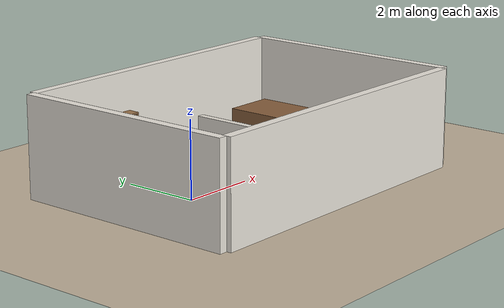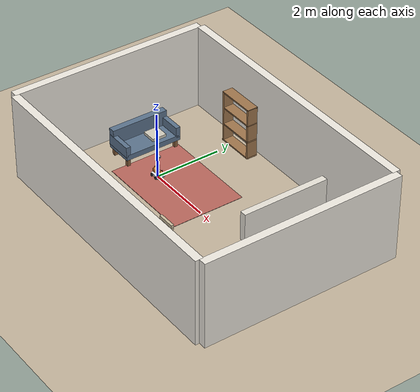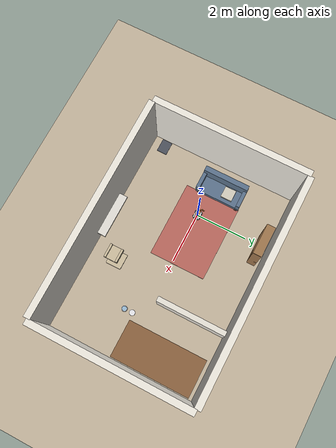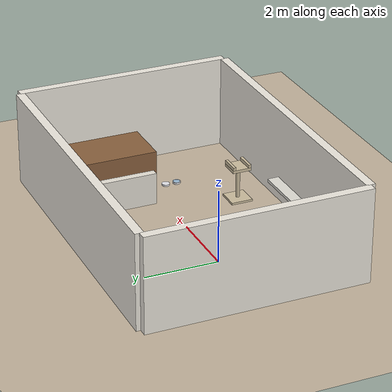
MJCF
<mujoco model="pet">
  <include file="pyunto_p1.xml"/>

  <compiler angle="radian" autolimits="true"/>
  <option timestep="0.004" integrator="implicitfast" gravity="0 0 -9.81"/>

  <visual>
    <headlight ambient="0.46 0.46 0.45" diffuse="0.42 0.42 0.41" specular="0.06 0.06 0.06"/>
    <map znear="0.02" zfar="60"/>
    <quality shadowsize="4096"/>
    <global offwidth="1600" offheight="1200"/>
  </visual>

  <asset>
    <texture name="sky" type="skybox" builtin="gradient"
             rgb1="0.55 0.62 0.72" rgb2="0.86 0.88 0.90" width="256" height="256"/>
    <texture name="floor_tex" type="2d" builtin="checker" rgb1="0.78 0.72 0.63"
             rgb2="0.74 0.68 0.59" width="256" height="256"/>
    <material name="floor" texture="floor_tex" texrepeat="8 6" specular="0.05"/>
    <material name="wall" rgba="0.93 0.91 0.87 1" specular="0.04"/>
    <material name="inner_wall" rgba="0.90 0.88 0.84 1" specular="0.04"/>
    <material name="wood" rgba="0.54 0.38 0.24 1" specular="0.15"/>
    <material name="sofa_mat" rgba="0.36 0.45 0.55 1" specular="0.08"/>
    <material name="cushion_mat" rgba="0.82 0.80 0.74 1" specular="0.05"/>
    <material name="shelf_mat" rgba="0.62 0.46 0.30 1" specular="0.12"/>
    <material name="rug_mat" rgba="0.72 0.40 0.36 1" specular="0.03"/>
    <material name="sill_mat" rgba="0.88 0.87 0.84 1" specular="0.06"/>
    <material name="carpet_mat" rgba="0.80 0.74 0.62 1" specular="0.04"/>
    <material name="steel" rgba="0.72 0.73 0.76 1" specular="0.5" shininess="0.6"/>

    <material name="cat_fur" rgba="0.87 0.52 0.22 1" specular="0.06"/>
    <material name="cat_belly" rgba="0.96 0.92 0.86 1" specular="0.05"/>
    <material name="cat_dark" rgba="0.42 0.24 0.12 1" specular="0.06"/>
    <material name="cat_eye" rgba="0.55 0.78 0.35 1" emission="0.25"/>

    <material name="bowl_mat" rgba="0.90 0.90 0.92 1" specular="0.35"/>
    <material name="water_mat" rgba="0.55 0.72 0.85 0.75" specular="0.5"/>
    <material name="dock_mat" rgba="0.30 0.32 0.36 1" specular="0.2"/>
  </asset>

  <worldbody>
    <light name="sun" directional="true" pos="2 0 5" dir="-0.2 0.15 -1"
           diffuse="0.55 0.54 0.52" specular="0.08 0.08 0.08"/>
    <!-- Warm light through the south window, so the sill reads as the sunny spot a cat
         would actually choose. -->
    <light name="window_light" pos="1.6 -2.6 1.9" dir="0 0.6 -0.5"
           diffuse="0.35 0.31 0.24" specular="0.05 0.05 0.05"/>

    <geom name="floor" type="plane" size="20 20 0.05" material="floor"
          friction="1.0 0.02 0.001" condim="3"/>

    <!-- ===== outer walls ===== -->
    <geom name="wall_n" type="box" pos="2.0 3.0 1.3" size="4.2 0.12 1.3" material="wall"/>
    <geom name="wall_s" type="box" pos="2.0 -3.0 1.3" size="4.2 0.12 1.3" material="wall"/>
    <geom name="wall_w" type="box" pos="-2.3 0 1.3" size="0.12 3.0 1.3" material="wall"/>
    <geom name="wall_e" type="box" pos="6.3 0 1.3" size="0.12 3.0 1.3" material="wall"/>

    <!-- Half-height divider to the kitchen: a cat goes over it, the robot must go round. -->
    <geom name="div_kitchen" type="box" pos="3.6 1.6 0.45" size="0.10 1.4 0.45"
          material="inner_wall"/>

    <!-- ===== living room (west) ===== -->
    <geom name="rug" type="box" pos="0.6 0.2 0.006" size="1.5 1.1 0.006" material="rug_mat"/>

    <body name="sofa" pos="-1.2 0.4 0">
      <geom name="sofa_leg_a" type="box" pos="0.32 0.78 0.13" size="0.05 0.05 0.13" material="wood"/>
      <geom name="sofa_leg_b" type="box" pos="0.32 -0.78 0.13" size="0.05 0.05 0.13" material="wood"/>
      <geom name="sofa_leg_c" type="box" pos="-0.32 0.78 0.13" size="0.05 0.05 0.13" material="wood"/>
      <geom name="sofa_leg_d" type="box" pos="-0.32 -0.78 0.13" size="0.05 0.05 0.13" material="wood"/>
      <geom name="sofa_seat" type="box" pos="0 0 0.325" size="0.42 0.88 0.08" material="sofa_mat"/>
      <geom name="sofa_back" type="box" pos="-0.33 0 0.56" size="0.10 0.88 0.30" material="sofa_mat"/>
      <geom name="sofa_arm_l" type="box" pos="0 0.82 0.51" size="0.42 0.07 0.16" material="sofa_mat"/>
      <geom name="sofa_arm_r" type="box" pos="0 -0.82 0.51" size="0.42 0.07 0.16" material="sofa_mat"/>
      <geom name="sofa_cushion" type="box" pos="0.05 0.30 0.43" size="0.22 0.22 0.06"
            material="cushion_mat"/>
    </body>

    <!--
      Bookshelf. The top is at 1.62 m, well above the robot's camera at 0.25 m, so a cat up
      there can only be found by tilting UP -- the other half of what the head is for.
    -->
    <body name="shelf" pos="0.2 2.6 0">
      <geom name="shelf_side_l" type="box" pos="-0.55 0 0.80" size="0.03 0.16 0.80" material="shelf_mat"/>
      <geom name="shelf_side_r" type="box" pos="0.55 0 0.80" size="0.03 0.16 0.80" material="shelf_mat"/>
      <geom name="shelf_b0" type="box" pos="0 0 0.02" size="0.58 0.16 0.02" material="shelf_mat"/>
      <geom name="shelf_b1" type="box" pos="0 0 0.56" size="0.58 0.16 0.02" material="shelf_mat"/>
      <geom name="shelf_b2" type="box" pos="0 0 1.10" size="0.58 0.16 0.02" material="shelf_mat"/>
      <geom name="shelf_top" type="box" pos="0 0 1.60" size="0.58 0.16 0.02" material="shelf_mat"/>
    </body>

    <!-- Window sill on the south wall: the sunny spot, at 0.62 m. -->
    <geom name="sill" type="box" pos="1.6 -2.72 0.62" size="0.85 0.16 0.04" material="sill_mat"/>

    <!--
      Cat tree, the third height. A cat asleep in the cradle at 0.95 m is visible from across
      the room only if the camera is aimed at it.
    -->
    <body name="tree" pos="2.9 -1.9 0">
      <geom name="tree_base" type="box" pos="0 0 0.03" size="0.30 0.30 0.03" material="carpet_mat"/>
      <geom name="tree_post" type="cylinder" pos="0 0 0.48" size="0.055 0.45" material="carpet_mat"/>
      <geom name="tree_cradle" type="box" pos="0 0 0.95" size="0.26 0.26 0.04" material="carpet_mat"/>
      <geom name="tree_rim_n" type="box" pos="0 0.22 1.03" size="0.26 0.04 0.05" material="carpet_mat"/>
      <geom name="tree_rim_s" type="box" pos="0 -0.22 1.03" size="0.26 0.04 0.05" material="carpet_mat"/>
    </body>

    <!-- ===== kitchen (east) ===== -->
    <geom name="counter" type="box" pos="5.4 1.2 0.45" size="0.70 1.5 0.45" material="wood"/>

    <!-- Food and water, by the kitchen doorway. Whether the bowl has been visited is the
         other thing an owner wants to know, so it is somewhere the robot can see. -->
    <body name="bowls" pos="4.4 -0.6 0">
      <geom name="bowl_food" type="cylinder" pos="0 0.16 0.025" size="0.11 0.025" material="bowl_mat"/>
      <geom name="bowl_water" type="cylinder" pos="0 -0.16 0.025" size="0.11 0.025" material="bowl_mat"/>
      <geom name="water" type="cylinder" pos="0 -0.16 0.045" size="0.095 0.008" material="water_mat"/>
    </body>

    <!-- The robot's dock, out of the way against the west wall. -->
    <geom name="dock" type="box" pos="-1.9 -2.4 0.012" size="0.26 0.20 0.012" material="dock_mat"/>

    <body name="cat" pos="0 0 0.16">
      <joint name="cat_x" type="slide" axis="1 0 0" range="-3.0 7.0" damping="14"/>
      <joint name="cat_y" type="slide" axis="0 1 0" range="-3.2 3.2" damping="14"/>
      <joint name="cat_z" type="slide" axis="0 0 1" range="-0.06 1.60" damping="14"/>
      <joint name="cat_yaw" type="hinge" axis="0 0 1" range="-3.2 3.2" damping="2.0"/>

      <!-- Curled small: about 0.34 m nose to tail base when sitting, which is a real cat. -->
      <geom name="cat_body" type="capsule" fromto="-0.11 0 0  0.09 0 0" size="0.072"
            material="cat_fur" contype="0" conaffinity="0"/>
      <geom name="cat_haunch" type="sphere" pos="-0.12 0 -0.01" size="0.075"
            material="cat_fur" contype="0" conaffinity="0"/>
      <geom name="cat_chest" type="sphere" pos="0.07 0 -0.02" size="0.058"
            material="cat_belly" contype="0" conaffinity="0"/>
      <geom name="cat_head" type="sphere" pos="0.17 0 0.045" size="0.055"
            material="cat_fur" contype="0" conaffinity="0"/>
      <geom name="cat_muzzle" type="sphere" pos="0.213 0 0.022" size="0.030"
            material="cat_belly" contype="0" conaffinity="0"/>
      <geom name="cat_ear_l" type="box" pos="0.155 0.035 0.092" size="0.016 0.008 0.024"
            material="cat_dark" contype="0" conaffinity="0"/>
      <geom name="cat_ear_r" type="box" pos="0.155 -0.035 0.092" size="0.016 0.008 0.024"
            material="cat_dark" contype="0" conaffinity="0"/>
      <geom name="cat_eye_l" type="sphere" pos="0.207 0.026 0.058" size="0.011"
            material="cat_eye" contype="0" conaffinity="0"/>
      <geom name="cat_eye_r" type="sphere" pos="0.207 -0.026 0.058" size="0.011"
            material="cat_eye" contype="0" conaffinity="0"/>
      <!-- Tail curled round the body, the way a sleeping cat's is. -->
      <geom name="cat_tail_a" type="capsule" fromto="-0.17 0 -0.02  -0.24 0.07 -0.01"
            size="0.020" material="cat_fur" contype="0" conaffinity="0"/>
      <geom name="cat_tail_b" type="capsule" fromto="-0.24 0.07 -0.01  -0.22 0.16 0.00"
            size="0.018" material="cat_fur" contype="0" conaffinity="0"/>
      <geom name="cat_paw_l" type="capsule" fromto="0.08 0.045 -0.062  0.17 0.045 -0.062"
            size="0.022" material="cat_belly" contype="0" conaffinity="0"/>
      <geom name="cat_paw_r" type="capsule" fromto="0.08 -0.045 -0.062  0.17 -0.045 -0.062"
            size="0.022" material="cat_belly" contype="0" conaffinity="0"/>
    </body>
  </worldbody>

  <actuator>
    <position name="cat_x" joint="cat_x" kp="900" ctrlrange="-3.0 7.0" forcerange="-260 260"/>
    <position name="cat_y" joint="cat_y" kp="900" ctrlrange="-3.2 3.2" forcerange="-260 260"/>
    <position name="cat_z" joint="cat_z" kp="1400" ctrlrange="-0.06 1.60" forcerange="-420 420"/>
    <position name="cat_yaw" joint="cat_yaw" kp="40" ctrlrange="-3.2 3.2" forcerange="-25 25"/>
  </actuator>

  <keyframe>
    <!-- The ordinary start: robot on its dock, cat asleep under the sofa. -->
    <key name="dock" qpos="-1.9 -2.4 0.062 1 0 0 0  0 0  0 0 0 0
                           -1.2 0.4 -0.076 0"/>
    <!-- Cat in the sun on the windowsill, for testing the tilt without the search. -->
    <key name="sill" qpos="-1.9 -2.4 0.062 1 0 0 0  0 0  0 0 0 0
                           1.6 -2.62 0.584 1.5708"/>
    <!-- Cat on top of the bookshelf: the one place that needs the camera aimed upward. -->
    <key name="shelf" qpos="-1.9 -2.4 0.062 1 0 0 0  0 0  0 0 0 0
                            0.2 2.54 1.544 -1.5708"/>
    <!-- Cat asleep in the cat tree, the third height. -->
    <key name="tree" qpos="-1.9 -2.4 0.062 1 0 0 0  0 0  0 0 0 0
                           2.9 -1.9 0.914 0"/>
  </keyframe>
</mujoco>

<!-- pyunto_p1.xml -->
<mujoco model="pyunto_p1">
  <compiler angle="radian" autolimits="true"/>

  <default>
    <default class="p1">
      <geom type="box" condim="3" friction="1.1 0.05 0.01" density="320" group="1"/>
      <joint type="hinge" damping="0.4" armature="0.004" limited="true"/>
      <default class="p1_wheel">
        <geom type="cylinder" size="0.045 0.018" condim="4"
              friction="1.6 0.06 0.02" density="600" rgba="0.16 0.16 0.18 1"/>
        <joint type="hinge" axis="0 1 0" damping="0.08" armature="0.0015" limited="false"/>
      </default>
    </default>
  </default>

  <asset>
    <material name="p1_body" rgba="0.95 0.95 0.96 1" specular="0.3" shininess="0.4"/>
    <material name="p1_trim" rgba="0.35 0.70 0.62 1" specular="0.4"/>
    <material name="p1_lens" rgba="0.08 0.09 0.12 1" specular="0.9" shininess="0.9"/>
  </asset>

  <worldbody>
    <body name="base" pos="0 0 0.062" childclass="p1">
      <freejoint name="root"/>
      <inertial pos="0 0 0" mass="2.2" diaginertia="0.010 0.014 0.018"/>

      <geom name="chassis" type="box" size="0.15 0.12 0.035" material="p1_body"/>
      <geom name="bumper_f" type="box" pos="0.155 0 -0.012" size="0.012 0.105 0.022"
            material="p1_trim"/>
      <geom name="bumper_r" type="box" pos="-0.155 0 -0.012" size="0.012 0.105 0.022"
            material="p1_trim"/>

      <body name="mast" pos="0.06 0 0.035">
        <geom name="mast_post" type="cylinder" size="0.016 0.27" pos="0 0 0.27"
              material="p1_trim"/>
        <body name="pan" pos="0 0 0.56">
          <joint name="cam_pan" axis="0 0 1" range="-2.6 2.6" damping="0.25"/>
          <geom name="pan_shell" type="cylinder" size="0.032 0.014" material="p1_body"/>
          <body name="head" pos="0 0 0.026">
            <joint name="cam_tilt" axis="0 1 0" range="-1.35 0.75" damping="0.2"/>
            <geom name="head_shell" type="box" size="0.036 0.042 0.028" material="p1_body"/>
            <geom name="lens" type="cylinder" size="0.017 0.008" pos="0.040 0 0"
                  euler="0 1.5708 0" material="p1_lens"/>
            <camera name="head_cam" pos="0.046 0 0" xyaxes="0 -1 0  0 0 1" fovy="72"/>
          </body>
        </body>
      </body>

      <body name="wheel_lf" pos="0.095 0.128 -0.017">
        <joint name="drive_lf" class="p1_wheel"/>
        <geom name="tyre_lf" class="p1_wheel" euler="1.5708 0 0"/>
      </body>
      <body name="wheel_rf" pos="0.095 -0.128 -0.017">
        <joint name="drive_rf" class="p1_wheel"/>
        <geom name="tyre_rf" class="p1_wheel" euler="1.5708 0 0"/>
      </body>
      <body name="wheel_lr" pos="-0.095 0.128 -0.017">
        <joint name="drive_lr" class="p1_wheel"/>
        <geom name="tyre_lr" class="p1_wheel" euler="1.5708 0 0"/>
      </body>
      <body name="wheel_rr" pos="-0.095 -0.128 -0.017">
        <joint name="drive_rr" class="p1_wheel"/>
        <geom name="tyre_rr" class="p1_wheel" euler="1.5708 0 0"/>
      </body>
    </body>
  </worldbody>

  <actuator>
    <velocity name="drive_lf" joint="drive_lf" kv="2.4" ctrlrange="-34 34"/>
    <velocity name="drive_rf" joint="drive_rf" kv="2.4" ctrlrange="-34 34"/>
    <velocity name="drive_lr" joint="drive_lr" kv="2.4" ctrlrange="-34 34"/>
    <velocity name="drive_rr" joint="drive_rr" kv="2.4" ctrlrange="-34 34"/>
    <position name="cam_pan" joint="cam_pan" kp="3.5" ctrlrange="-2.6 2.6"/>
    <position name="cam_tilt" joint="cam_tilt" kp="2.5" ctrlrange="-1.35 0.75"/>
  </actuator>

</mujoco>
